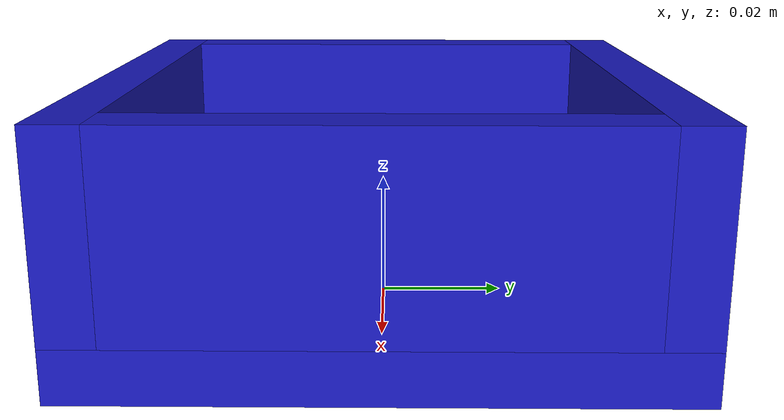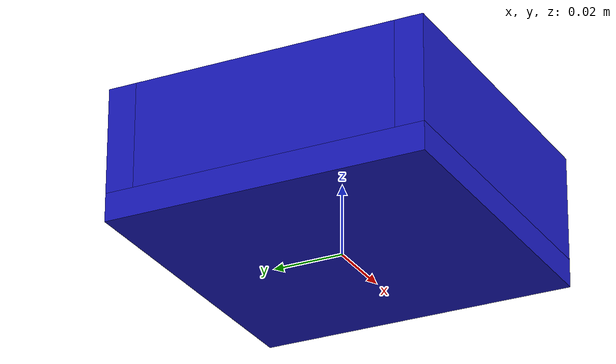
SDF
<?xml version="1.0"?>
<sdf version="1.8">
  <model name="bin_blue">
    <static>true</static>
    <link name="link">
      <collision name="floor_collision"><pose>0 0 0.004 0 0 0</pose><geometry><box><size>0.09 0.09 0.008</size></box></geometry></collision>
      <visual name="floor_visual"><pose>0 0 0.004 0 0 0</pose><geometry><box><size>0.09 0.09 0.008</size></box></geometry><material><ambient>0.08 0.08 0.55 1</ambient><diffuse>0.10 0.10 0.75 1</diffuse></material></visual>
      <collision name="wall_n_collision"><pose>0 0.041 0.023 0 0 0</pose><geometry><box><size>0.09 0.008 0.03</size></box></geometry></collision>
      <visual name="wall_n_visual"><pose>0 0.041 0.023 0 0 0</pose><geometry><box><size>0.09 0.008 0.03</size></box></geometry><material><ambient>0.08 0.08 0.55 1</ambient><diffuse>0.10 0.10 0.75 1</diffuse></material></visual>
      <collision name="wall_s_collision"><pose>0 -0.041 0.023 0 0 0</pose><geometry><box><size>0.09 0.008 0.03</size></box></geometry></collision>
      <visual name="wall_s_visual"><pose>0 -0.041 0.023 0 0 0</pose><geometry><box><size>0.09 0.008 0.03</size></box></geometry><material><ambient>0.08 0.08 0.55 1</ambient><diffuse>0.10 0.10 0.75 1</diffuse></material></visual>
      <collision name="wall_e_collision"><pose>0.041 0 0.023 0 0 0</pose><geometry><box><size>0.008 0.074 0.03</size></box></geometry></collision>
      <visual name="wall_e_visual"><pose>0.041 0 0.023 0 0 0</pose><geometry><box><size>0.008 0.074 0.03</size></box></geometry><material><ambient>0.08 0.08 0.55 1</ambient><diffuse>0.10 0.10 0.75 1</diffuse></material></visual>
      <collision name="wall_w_collision"><pose>-0.041 0 0.023 0 0 0</pose><geometry><box><size>0.008 0.074 0.03</size></box></geometry></collision>
      <visual name="wall_w_visual"><pose>-0.041 0 0.023 0 0 0</pose><geometry><box><size>0.008 0.074 0.03</size></box></geometry><material><ambient>0.08 0.08 0.55 1</ambient><diffuse>0.10 0.10 0.75 1</diffuse></material></visual>
    </link>
  </model>
</sdf>
